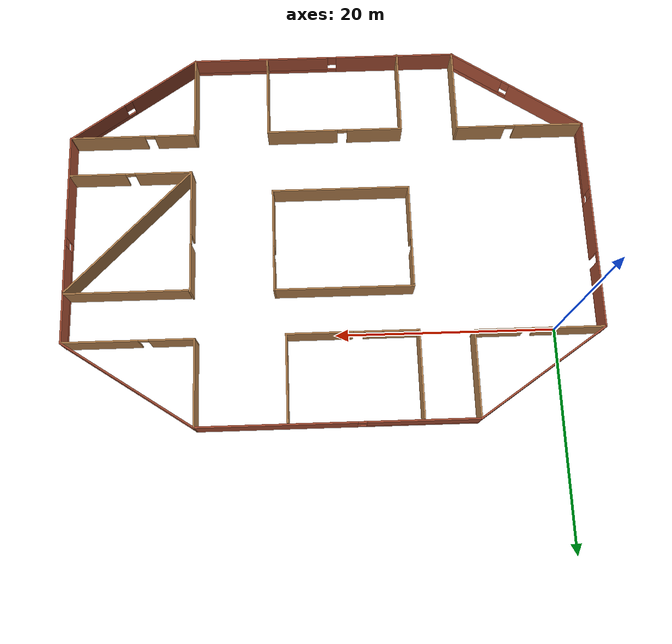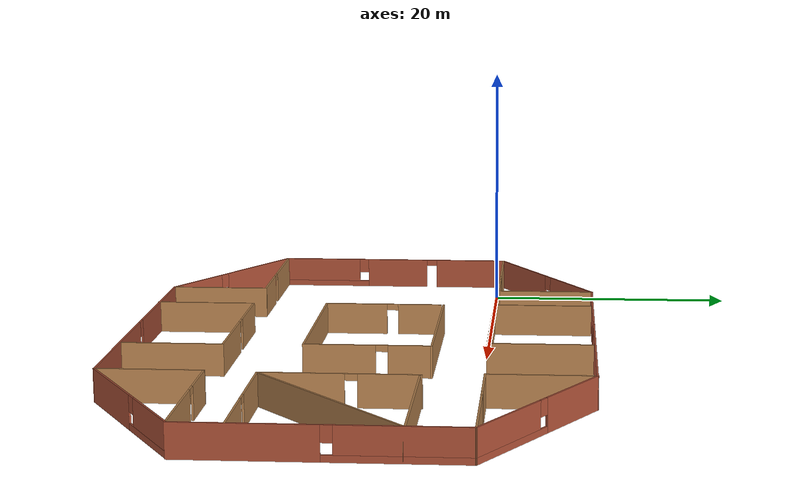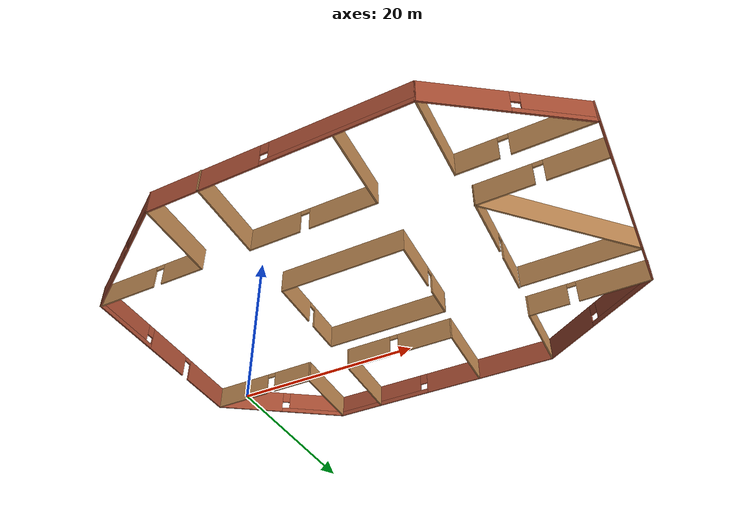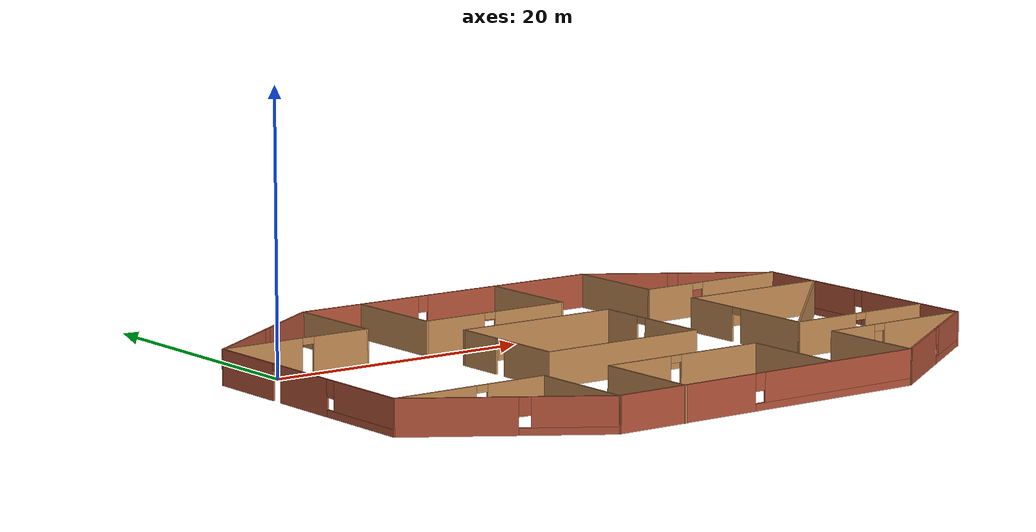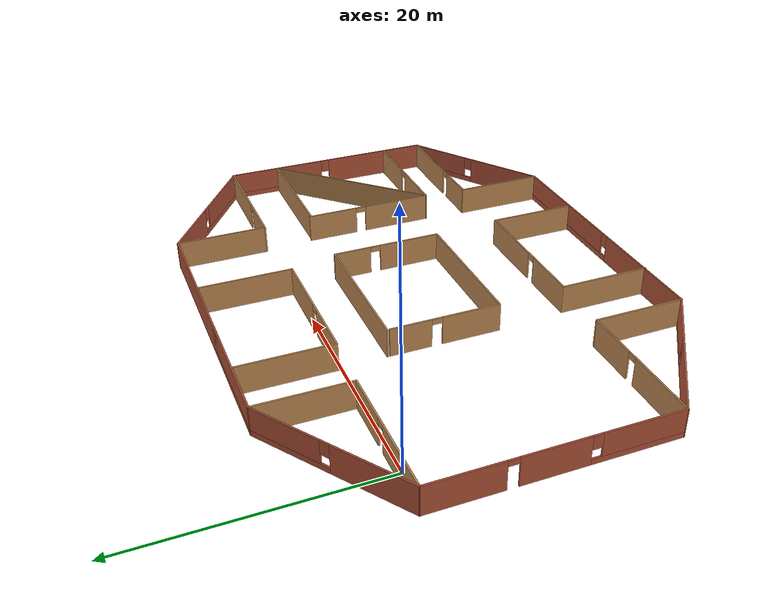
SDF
<?xml version='1.0'?>
<sdf version='1.6'>
  <model name='structure'>
    <pose frame=''>20.1659 -9.48658 0 0 -0 0</pose>
    <link name='Wall_0'>
      <pose frame=''>-24.193 0.018661 0 0 0 -1.5708</pose>
      <visual name='Wall_0_Visual_0'>
        <pose frame=''>-6.90802 0 1.25 0 -0 0</pose>
        <geometry>
          <box>
            <size>6.18397 0.15 2.5</size>
          </box>
        </geometry>
        <material>
          <script>
            <uri>file://media/materials/scripts/gazebo.material</uri>
            <name>Gazebo/Bricks</name>
          </script>
          <ambient>1 1 1 1</ambient>
        </material>
      </visual>
      <collision name='Wall_0_Collision_0'>
        <geometry>
          <box>
            <size>6.18397 0.15 2.5</size>
          </box>
        </geometry>
        <pose frame=''>-6.90802 0 1.25 0 -0 0</pose>
      </collision>
      <visual name='Wall_0_Visual_1'>
        <pose frame=''>-0.221667 0 1.25 0 -0 0</pose>
        <geometry>
          <box>
            <size>5.38873 0.15 2.5</size>
          </box>
        </geometry>
        <material>
          <script>
            <uri>file://media/materials/scripts/gazebo.material</uri>
            <name>Gazebo/Bricks</name>
          </script>
          <ambient>1 1 1 1</ambient>
        </material>
      </visual>
      <collision name='Wall_0_Collision_1'>
        <geometry>
          <box>
            <size>5.38873 0.15 2.5</size>
          </box>
        </geometry>
        <pose frame=''>-0.221667 0 1.25 0 -0 0</pose>
      </collision>
      <visual name='Wall_0_Visual_2'>
        <pose frame=''>6.23635 0 0.25 0 -0 0</pose>
        <geometry>
          <box>
            <size>7.5273 0.15 0.5</size>
          </box>
        </geometry>
        <material>
          <script>
            <uri>file://media/materials/scripts/gazebo.material</uri>
            <name>Gazebo/Bricks</name>
          </script>
          <ambient>1 1 1 1</ambient>
        </material>
      </visual>
      <collision name='Wall_0_Collision_2'>
        <geometry>
          <box>
            <size>7.5273 0.15 0.5</size>
          </box>
        </geometry>
        <pose frame=''>6.23635 0 0.25 0 -0 0</pose>
      </collision>
      <visual name='Wall_0_Visual_3'>
        <pose frame=''>6.63635 0 1.5 0 -0 0</pose>
        <geometry>
          <box>
            <size>6.7273 0.15 2</size>
          </box>
        </geometry>
        <material>
          <script>
            <uri>file://media/materials/scripts/gazebo.material</uri>
            <name>Gazebo/Bricks</name>
          </script>
          <ambient>1 1 1 1</ambient>
        </material>
      </visual>
      <collision name='Wall_0_Collision_3'>
        <geometry>
          <box>
            <size>6.7273 0.15 2</size>
          </box>
        </geometry>
        <pose frame=''>6.63635 0 1.5 0 -0 0</pose>
      </collision>
      <visual name='Wall_0_Visual_4'>
        <pose frame=''>2.8727 0 1.9 0 -0 0</pose>
        <geometry>
          <box>
            <size>0.8 0.15 1.2</size>
          </box>
        </geometry>
        <material>
          <script>
            <uri>file://media/materials/scripts/gazebo.material</uri>
            <name>Gazebo/Bricks</name>
          </script>
          <ambient>1 1 1 1</ambient>
        </material>
      </visual>
      <collision name='Wall_0_Collision_4'>
        <geometry>
          <box>
            <size>0.8 0.15 1.2</size>
          </box>
        </geometry>
        <pose frame=''>2.8727 0 1.9 0 -0 0</pose>
      </collision>
      <visual name='Wall_0_Visual_5'>
        <pose frame=''>-3.36603 0 2.25 0 -0 0</pose>
        <geometry>
          <box>
            <size>0.9 0.15 0.5</size>
          </box>
        </geometry>
        <material>
          <script>
            <uri>file://media/materials/scripts/gazebo.material</uri>
            <name>Gazebo/Bricks</name>
          </script>
          <ambient>1 1 1 1</ambient>
        </material>
      </visual>
      <collision name='Wall_0_Collision_5'>
        <geometry>
          <box>
            <size>0.9 0.15 0.5</size>
          </box>
        </geometry>
        <pose frame=''>-3.36603 0 2.25 0 -0 0</pose>
      </collision>
    </link>
    <link name='Wall_11'>
      <pose frame=''>0.082031 -17.7563 0 0 -0 0</pose>
      <visual name='Wall_11_Visual_0'>
        <pose frame=''>-6.85381 0 1.25 0 -0 0</pose>
        <geometry>
          <box>
            <size>11.2924 0.15 2.5</size>
          </box>
        </geometry>
        <material>
          <script>
            <uri>file://media/materials/scripts/gazebo.material</uri>
            <name>Gazebo/Bricks</name>
          </script>
          <ambient>1 1 1 1</ambient>
        </material>
      </visual>
      <collision name='Wall_11_Collision_0'>
        <geometry>
          <box>
            <size>11.2924 0.15 2.5</size>
          </box>
        </geometry>
        <pose frame=''>-6.85381 0 1.25 0 -0 0</pose>
      </collision>
      <visual name='Wall_11_Visual_1'>
        <pose frame=''>5.64619 0 0.25 0 -0 0</pose>
        <geometry>
          <box>
            <size>13.7076 0.15 0.5</size>
          </box>
        </geometry>
        <material>
          <script>
            <uri>file://media/materials/scripts/gazebo.material</uri>
            <name>Gazebo/Bricks</name>
          </script>
          <ambient>1 1 1 1</ambient>
        </material>
      </visual>
      <collision name='Wall_11_Collision_1'>
        <geometry>
          <box>
            <size>13.7076 0.15 0.5</size>
          </box>
        </geometry>
        <pose frame=''>5.64619 0 0.25 0 -0 0</pose>
      </collision>
      <visual name='Wall_11_Visual_2'>
        <pose frame=''>6.04619 0 1.5 0 -0 0</pose>
        <geometry>
          <box>
            <size>12.9076 0.15 2</size>
          </box>
        </geometry>
        <material>
          <script>
            <uri>file://media/materials/scripts/gazebo.material</uri>
            <name>Gazebo/Bricks</name>
          </script>
          <ambient>1 1 1 1</ambient>
        </material>
      </visual>
      <collision name='Wall_11_Collision_2'>
        <geometry>
          <box>
            <size>12.9076 0.15 2</size>
          </box>
        </geometry>
        <pose frame=''>6.04619 0 1.5 0 -0 0</pose>
      </collision>
      <visual name='Wall_11_Visual_3'>
        <pose frame=''>-0.807615 0 1.9 0 -0 0</pose>
        <geometry>
          <box>
            <size>0.8 0.15 1.2</size>
          </box>
        </geometry>
        <material>
          <script>
            <uri>file://media/materials/scripts/gazebo.material</uri>
            <name>Gazebo/Bricks</name>
          </script>
          <ambient>1 1 1 1</ambient>
        </material>
      </visual>
      <collision name='Wall_11_Collision_3'>
        <geometry>
          <box>
            <size>0.8 0.15 1.2</size>
          </box>
        </geometry>
        <pose frame=''>-0.807615 0 1.9 0 -0 0</pose>
      </collision>
    </link>
    <link name='Wall_17'>
      <pose frame=''>24.1932 0.018623 0 0 -0 1.57081</pose>
      <visual name='Wall_17_Visual_0'>
        <pose frame=''>-4.99968 0 1.25 0 -0 0</pose>
        <geometry>
          <box>
            <size>10.0006 0.15 2.5</size>
          </box>
        </geometry>
        <material>
          <script>
            <uri>file://media/materials/scripts/gazebo.material</uri>
            <name>Gazebo/Bricks</name>
          </script>
          <ambient>1 1 1 1</ambient>
        </material>
      </visual>
      <collision name='Wall_17_Collision_0'>
        <geometry>
          <box>
            <size>10.0006 0.15 2.5</size>
          </box>
        </geometry>
        <pose frame=''>-4.99968 0 1.25 0 -0 0</pose>
      </collision>
      <visual name='Wall_17_Visual_1'>
        <pose frame=''>5.00032 0 0.25 0 -0 0</pose>
        <geometry>
          <box>
            <size>9.99935 0.15 0.5</size>
          </box>
        </geometry>
        <material>
          <script>
            <uri>file://media/materials/scripts/gazebo.material</uri>
            <name>Gazebo/Bricks</name>
          </script>
          <ambient>1 1 1 1</ambient>
        </material>
      </visual>
      <collision name='Wall_17_Collision_1'>
        <geometry>
          <box>
            <size>9.99935 0.15 0.5</size>
          </box>
        </geometry>
        <pose frame=''>5.00032 0 0.25 0 -0 0</pose>
      </collision>
      <visual name='Wall_17_Visual_2'>
        <pose frame=''>5.40032 0 1.5 0 -0 0</pose>
        <geometry>
          <box>
            <size>9.19935 0.15 2</size>
          </box>
        </geometry>
        <material>
          <script>
            <uri>file://media/materials/scripts/gazebo.material</uri>
            <name>Gazebo/Bricks</name>
          </script>
          <ambient>1 1 1 1</ambient>
        </material>
      </visual>
      <collision name='Wall_17_Collision_2'>
        <geometry>
          <box>
            <size>9.19935 0.15 2</size>
          </box>
        </geometry>
        <pose frame=''>5.40032 0 1.5 0 -0 0</pose>
      </collision>
      <visual name='Wall_17_Visual_3'>
        <pose frame=''>0.400646 0 1.9 0 -0 0</pose>
        <geometry>
          <box>
            <size>0.8 0.15 1.2</size>
          </box>
        </geometry>
        <material>
          <script>
            <uri>file://media/materials/scripts/gazebo.material</uri>
            <name>Gazebo/Bricks</name>
          </script>
          <ambient>1 1 1 1</ambient>
        </material>
      </visual>
      <collision name='Wall_17_Collision_3'>
        <geometry>
          <box>
            <size>0.8 0.15 1.2</size>
          </box>
        </geometry>
        <pose frame=''>0.400646 0 1.9 0 -0 0</pose>
      </collision>
    </link>
    <link name='Wall_19'>
      <collision name='Wall_19_Collision'>
        <geometry>
          <box>
            <size>8 0.15 2.5</size>
          </box>
        </geometry>
        <pose frame=''>0 0 1.25 0 -0 0</pose>
      </collision>
      <visual name='Wall_19_Visual'>
        <pose frame=''>0 0 1.25 0 -0 0</pose>
        <geometry>
          <box>
            <size>8 0.15 2.5</size>
          </box>
        </geometry>
        <material>
          <script>
            <uri>file://media/materials/scripts/gazebo.material</uri>
            <name>Gazebo/Wood</name>
          </script>
          <ambient>1 1 1 1</ambient>
        </material>
      </visual>
      <pose frame=''>12.507 -13.8313 0 0 -0 1.5708</pose>
    </link>
    <link name='Wall_21'>
      <pose frame=''>18.307 -9.90634 0 0 -0 0</pose>
      <visual name='Wall_21_Visual_0'>
        <pose frame=''>-3.92627 0 1.25 0 -0 0</pose>
        <geometry>
          <box>
            <size>3.89747 0.15 2.5</size>
          </box>
        </geometry>
        <material>
          <script>
            <uri>file://media/materials/scripts/gazebo.material</uri>
            <name>Gazebo/Wood</name>
          </script>
          <ambient>1 1 1 1</ambient>
        </material>
      </visual>
      <collision name='Wall_21_Collision_0'>
        <geometry>
          <box>
            <size>3.89747 0.15 2.5</size>
          </box>
        </geometry>
        <pose frame=''>-3.92627 0 1.25 0 -0 0</pose>
      </collision>
      <visual name='Wall_21_Visual_1'>
        <pose frame=''>2.39873 0 1.25 0 -0 0</pose>
        <geometry>
          <box>
            <size>6.95253 0.15 2.5</size>
          </box>
        </geometry>
        <material>
          <script>
            <uri>file://media/materials/scripts/gazebo.material</uri>
            <name>Gazebo/Wood</name>
          </script>
          <ambient>1 1 1 1</ambient>
        </material>
      </visual>
      <collision name='Wall_21_Collision_1'>
        <geometry>
          <box>
            <size>6.95253 0.15 2.5</size>
          </box>
        </geometry>
        <pose frame=''>2.39873 0 1.25 0 -0 0</pose>
      </collision>
      <visual name='Wall_21_Visual_2'>
        <pose frame=''>-1.52753 0 2.25 0 -0 0</pose>
        <geometry>
          <box>
            <size>0.9 0.15 0.5</size>
          </box>
        </geometry>
        <material>
          <script>
            <uri>file://media/materials/scripts/gazebo.material</uri>
            <name>Gazebo/Wood</name>
          </script>
          <ambient>1 1 1 1</ambient>
        </material>
      </visual>
      <collision name='Wall_21_Collision_2'>
        <geometry>
          <box>
            <size>0.9 0.15 0.5</size>
          </box>
        </geometry>
        <pose frame=''>-1.52753 0 2.25 0 -0 0</pose>
      </collision>
    </link>
    <link name='Wall_23'>
      <pose frame=''>18.2681 9.94359 0 0 -0 3.14159</pose>
      <visual name='Wall_23_Visual_0'>
        <pose frame=''>-2.5252 0 1.25 0 -0 0</pose>
        <geometry>
          <box>
            <size>6.94961 0.15 2.5</size>
          </box>
        </geometry>
        <material>
          <script>
            <uri>file://media/materials/scripts/gazebo.material</uri>
            <name>Gazebo/Wood</name>
          </script>
          <ambient>1 1 1 1</ambient>
        </material>
      </visual>
      <collision name='Wall_23_Collision_0'>
        <geometry>
          <box>
            <size>6.94961 0.15 2.5</size>
          </box>
        </geometry>
        <pose frame=''>-2.5252 0 1.25 0 -0 0</pose>
      </collision>
      <visual name='Wall_23_Visual_1'>
        <pose frame=''>3.9248 0 1.25 0 -0 0</pose>
        <geometry>
          <box>
            <size>4.15039 0.15 2.5</size>
          </box>
        </geometry>
        <material>
          <script>
            <uri>file://media/materials/scripts/gazebo.material</uri>
            <name>Gazebo/Wood</name>
          </script>
          <ambient>1 1 1 1</ambient>
        </material>
      </visual>
      <collision name='Wall_23_Collision_1'>
        <geometry>
          <box>
            <size>4.15039 0.15 2.5</size>
          </box>
        </geometry>
        <pose frame=''>3.9248 0 1.25 0 -0 0</pose>
      </collision>
      <visual name='Wall_23_Visual_2'>
        <pose frame=''>1.3996 0 2.25 0 -0 0</pose>
        <geometry>
          <box>
            <size>0.9 0.15 0.5</size>
          </box>
        </geometry>
        <material>
          <script>
            <uri>file://media/materials/scripts/gazebo.material</uri>
            <name>Gazebo/Wood</name>
          </script>
          <ambient>1 1 1 1</ambient>
        </material>
      </visual>
      <collision name='Wall_23_Collision_2'>
        <geometry>
          <box>
            <size>0.9 0.15 0.5</size>
          </box>
        </geometry>
        <pose frame=''>1.3996 0 2.25 0 -0 0</pose>
      </collision>
    </link>
    <link name='Wall_27'>
      <collision name='Wall_27_Collision'>
        <geometry>
          <box>
            <size>8 0.15 2.5</size>
          </box>
        </geometry>
        <pose frame=''>0 0 1.25 0 -0 0</pose>
      </collision>
      <visual name='Wall_27_Visual'>
        <pose frame=''>0 0 1.25 0 -0 0</pose>
        <geometry>
          <box>
            <size>8 0.15 2.5</size>
          </box>
        </geometry>
        <material>
          <script>
            <uri>file://media/materials/scripts/gazebo.material</uri>
            <name>Gazebo/Wood</name>
          </script>
          <ambient>1 1 1 1</ambient>
        </material>
      </visual>
      <pose frame=''>12.3431 13.8686 0 0 -0 1.5708</pose>
    </link>
    <link name='Wall_29'>
      <pose frame=''>-0.081897 17.7936 0 0 -0 3.14159</pose>
      <visual name='Wall_29_Visual_0'>
        <pose frame=''>-5.3765 0 1.25 0 -0 0</pose>
        <geometry>
          <box>
            <size>14.247 0.15 2.5</size>
          </box>
        </geometry>
        <material>
          <script>
            <uri>file://media/materials/scripts/gazebo.material</uri>
            <name>Gazebo/Bricks</name>
          </script>
          <ambient>1 1 1 1</ambient>
        </material>
      </visual>
      <collision name='Wall_29_Collision_0'>
        <geometry>
          <box>
            <size>14.247 0.15 2.5</size>
          </box>
        </geometry>
        <pose frame=''>-5.3765 0 1.25 0 -0 0</pose>
      </collision>
      <visual name='Wall_29_Visual_1'>
        <pose frame=''>7.1235 0 0.25 0 -0 0</pose>
        <geometry>
          <box>
            <size>10.753 0.15 0.5</size>
          </box>
        </geometry>
        <material>
          <script>
            <uri>file://media/materials/scripts/gazebo.material</uri>
            <name>Gazebo/Bricks</name>
          </script>
          <ambient>1 1 1 1</ambient>
        </material>
      </visual>
      <collision name='Wall_29_Collision_1'>
        <geometry>
          <box>
            <size>10.753 0.15 0.5</size>
          </box>
        </geometry>
        <pose frame=''>7.1235 0 0.25 0 -0 0</pose>
      </collision>
      <visual name='Wall_29_Visual_2'>
        <pose frame=''>7.5235 0 1.5 0 -0 0</pose>
        <geometry>
          <box>
            <size>9.953 0.15 2</size>
          </box>
        </geometry>
        <material>
          <script>
            <uri>file://media/materials/scripts/gazebo.material</uri>
            <name>Gazebo/Bricks</name>
          </script>
          <ambient>1 1 1 1</ambient>
        </material>
      </visual>
      <collision name='Wall_29_Collision_2'>
        <geometry>
          <box>
            <size>9.953 0.15 2</size>
          </box>
        </geometry>
        <pose frame=''>7.5235 0 1.5 0 -0 0</pose>
      </collision>
      <visual name='Wall_29_Visual_3'>
        <pose frame=''>2.147 0 1.9 0 -0 0</pose>
        <geometry>
          <box>
            <size>0.8 0.15 1.2</size>
          </box>
        </geometry>
        <material>
          <script>
            <uri>file://media/materials/scripts/gazebo.material</uri>
            <name>Gazebo/Bricks</name>
          </script>
          <ambient>1 1 1 1</ambient>
        </material>
      </visual>
      <collision name='Wall_29_Collision_3'>
        <geometry>
          <box>
            <size>0.8 0.15 1.2</size>
          </box>
        </geometry>
        <pose frame=''>2.147 0 1.9 0 -0 0</pose>
      </collision>
    </link>
    <link name='Wall_31'>
      <collision name='Wall_31_Collision'>
        <geometry>
          <box>
            <size>8 0.15 2.5</size>
          </box>
        </geometry>
        <pose frame=''>0 0 1.25 0 -0 0</pose>
      </collision>
      <visual name='Wall_31_Visual'>
        <pose frame=''>0 0 1.25 0 -0 0</pose>
        <geometry>
          <box>
            <size>8 0.15 2.5</size>
          </box>
        </geometry>
        <material>
          <script>
            <uri>file://media/materials/scripts/gazebo.material</uri>
            <name>Gazebo/Wood</name>
          </script>
          <ambient>1 1 1 1</ambient>
        </material>
      </visual>
      <pose frame=''>-12.5069 13.8686 0 0 0 -1.5708</pose>
    </link>
    <link name='Wall_33'>
      <pose frame=''>-18.3499 9.94362 0 0 -0 3.14159</pose>
      <visual name='Wall_33_Visual_0'>
        <pose frame=''>-3.649 0 1.25 0 -0 0</pose>
        <geometry>
          <box>
            <size>4.53806 0.15 2.5</size>
          </box>
        </geometry>
        <material>
          <script>
            <uri>file://media/materials/scripts/gazebo.material</uri>
            <name>Gazebo/Wood</name>
          </script>
          <ambient>1 1 1 1</ambient>
        </material>
      </visual>
      <collision name='Wall_33_Collision_0'>
        <geometry>
          <box>
            <size>4.53806 0.15 2.5</size>
          </box>
        </geometry>
        <pose frame=''>-3.649 0 1.25 0 -0 0</pose>
      </collision>
      <visual name='Wall_33_Visual_1'>
        <pose frame=''>2.71903 0 1.25 0 -0 0</pose>
        <geometry>
          <box>
            <size>6.39801 0.15 2.5</size>
          </box>
        </geometry>
        <material>
          <script>
            <uri>file://media/materials/scripts/gazebo.material</uri>
            <name>Gazebo/Wood</name>
          </script>
          <ambient>1 1 1 1</ambient>
        </material>
      </visual>
      <collision name='Wall_33_Collision_1'>
        <geometry>
          <box>
            <size>6.39801 0.15 2.5</size>
          </box>
        </geometry>
        <pose frame=''>2.71903 0 1.25 0 -0 0</pose>
      </collision>
      <visual name='Wall_33_Visual_2'>
        <pose frame=''>-0.929972 0 2.25 0 -0 0</pose>
        <geometry>
          <box>
            <size>0.9 0.15 0.5</size>
          </box>
        </geometry>
        <material>
          <script>
            <uri>file://media/materials/scripts/gazebo.material</uri>
            <name>Gazebo/Wood</name>
          </script>
          <ambient>1 1 1 1</ambient>
        </material>
      </visual>
      <collision name='Wall_33_Collision_2'>
        <geometry>
          <box>
            <size>0.9 0.15 0.5</size>
          </box>
        </geometry>
        <pose frame=''>-0.929972 0 2.25 0 -0 0</pose>
      </collision>
    </link>
    <link name='Wall_35'>
      <pose frame=''>-18.3499 13.8686 0 0 -0 0.591502</pose>
      <visual name='Wall_35_Visual_0'>
        <pose frame=''>-3.5498 0 1.25 0 -0 0</pose>
        <geometry>
          <box>
            <size>7.12825 0.15 2.5</size>
          </box>
        </geometry>
        <material>
          <script>
            <uri>file://media/materials/scripts/gazebo.material</uri>
            <name>Gazebo/Bricks</name>
          </script>
          <ambient>1 1 1 1</ambient>
        </material>
      </visual>
      <collision name='Wall_35_Collision_0'>
        <geometry>
          <box>
            <size>7.12825 0.15 2.5</size>
          </box>
        </geometry>
        <pose frame=''>-3.5498 0 1.25 0 -0 0</pose>
      </collision>
      <visual name='Wall_35_Visual_1'>
        <pose frame=''>3.56413 0 0.25 0 -0 0</pose>
        <geometry>
          <box>
            <size>7.09959 0.15 0.5</size>
          </box>
        </geometry>
        <material>
          <script>
            <uri>file://media/materials/scripts/gazebo.material</uri>
            <name>Gazebo/Bricks</name>
          </script>
          <ambient>1 1 1 1</ambient>
        </material>
      </visual>
      <collision name='Wall_35_Collision_1'>
        <geometry>
          <box>
            <size>7.09959 0.15 0.5</size>
          </box>
        </geometry>
        <pose frame=''>3.56413 0 0.25 0 -0 0</pose>
      </collision>
      <visual name='Wall_35_Visual_2'>
        <pose frame=''>3.96413 0 1.5 0 -0 0</pose>
        <geometry>
          <box>
            <size>6.29959 0.15 2</size>
          </box>
        </geometry>
        <material>
          <script>
            <uri>file://media/materials/scripts/gazebo.material</uri>
            <name>Gazebo/Bricks</name>
          </script>
          <ambient>1 1 1 1</ambient>
        </material>
      </visual>
      <collision name='Wall_35_Collision_2'>
        <geometry>
          <box>
            <size>6.29959 0.15 2</size>
          </box>
        </geometry>
        <pose frame=''>3.96413 0 1.5 0 -0 0</pose>
      </collision>
      <visual name='Wall_35_Visual_3'>
        <pose frame=''>0.414331 0 1.9 0 -0 0</pose>
        <geometry>
          <box>
            <size>0.8 0.15 1.2</size>
          </box>
        </geometry>
        <material>
          <script>
            <uri>file://media/materials/scripts/gazebo.material</uri>
            <name>Gazebo/Bricks</name>
          </script>
          <ambient>1 1 1 1</ambient>
        </material>
      </visual>
      <collision name='Wall_35_Collision_3'>
        <geometry>
          <box>
            <size>0.8 0.15 1.2</size>
          </box>
        </geometry>
        <pose frame=''>0.414331 0 1.9 0 -0 0</pose>
      </collision>
    </link>
    <link name='Wall_37'>
      <pose frame=''>18.2681 13.8686 0 0 0 -0.585076</pose>
      <visual name='Wall_37_Visual_0'>
        <pose frame=''>-3.98995 0 1.25 0 -0 0</pose>
        <geometry>
          <box>
            <size>6.38435 0.15 2.5</size>
          </box>
        </geometry>
        <material>
          <script>
            <uri>file://media/materials/scripts/gazebo.material</uri>
            <name>Gazebo/Bricks</name>
          </script>
          <ambient>1 1 1 1</ambient>
        </material>
      </visual>
      <collision name='Wall_37_Collision_0'>
        <geometry>
          <box>
            <size>6.38435 0.15 2.5</size>
          </box>
        </geometry>
        <pose frame=''>-3.98995 0 1.25 0 -0 0</pose>
      </collision>
      <visual name='Wall_37_Visual_1'>
        <pose frame=''>3.19217 0 0.25 0 -0 0</pose>
        <geometry>
          <box>
            <size>7.97991 0.15 0.5</size>
          </box>
        </geometry>
        <material>
          <script>
            <uri>file://media/materials/scripts/gazebo.material</uri>
            <name>Gazebo/Bricks</name>
          </script>
          <ambient>1 1 1 1</ambient>
        </material>
      </visual>
      <collision name='Wall_37_Collision_1'>
        <geometry>
          <box>
            <size>7.97991 0.15 0.5</size>
          </box>
        </geometry>
        <pose frame=''>3.19217 0 0.25 0 -0 0</pose>
      </collision>
      <visual name='Wall_37_Visual_2'>
        <pose frame=''>3.59217 0 1.5 0 -0 0</pose>
        <geometry>
          <box>
            <size>7.17991 0.15 2</size>
          </box>
        </geometry>
        <material>
          <script>
            <uri>file://media/materials/scripts/gazebo.material</uri>
            <name>Gazebo/Bricks</name>
          </script>
          <ambient>1 1 1 1</ambient>
        </material>
      </visual>
      <collision name='Wall_37_Collision_2'>
        <geometry>
          <box>
            <size>7.17991 0.15 2</size>
          </box>
        </geometry>
        <pose frame=''>3.59217 0 1.5 0 -0 0</pose>
      </collision>
      <visual name='Wall_37_Visual_3'>
        <pose frame=''>-0.397779 0 1.9 0 -0 0</pose>
        <geometry>
          <box>
            <size>0.8 0.15 1.2</size>
          </box>
        </geometry>
        <material>
          <script>
            <uri>file://media/materials/scripts/gazebo.material</uri>
            <name>Gazebo/Bricks</name>
          </script>
          <ambient>1 1 1 1</ambient>
        </material>
      </visual>
      <collision name='Wall_37_Collision_3'>
        <geometry>
          <box>
            <size>0.8 0.15 1.2</size>
          </box>
        </geometry>
        <pose frame=''>-0.397779 0 1.9 0 -0 0</pose>
      </collision>
    </link>
    <link name='Wall_40'>
      <pose frame=''>18.307 -13.8313 0 0 -0 0.594933</pose>
      <visual name='Wall_40_Visual_0'>
        <pose frame=''>-3.38232 0 1.25 0 -0 0</pose>
        <geometry>
          <box>
            <size>7.39187 0.15 2.5</size>
          </box>
        </geometry>
        <material>
          <script>
            <uri>file://media/materials/scripts/gazebo.material</uri>
            <name>Gazebo/Bricks</name>
          </script>
          <ambient>1 1 1 1</ambient>
        </material>
      </visual>
      <collision name='Wall_40_Collision_0'>
        <geometry>
          <box>
            <size>7.39187 0.15 2.5</size>
          </box>
        </geometry>
        <pose frame=''>-3.38232 0 1.25 0 -0 0</pose>
      </collision>
      <visual name='Wall_40_Visual_1'>
        <pose frame=''>3.69593 0 0.25 0 -0 0</pose>
        <geometry>
          <box>
            <size>6.76465 0.15 0.5</size>
          </box>
        </geometry>
        <material>
          <script>
            <uri>file://media/materials/scripts/gazebo.material</uri>
            <name>Gazebo/Bricks</name>
          </script>
          <ambient>1 1 1 1</ambient>
        </material>
      </visual>
      <collision name='Wall_40_Collision_1'>
        <geometry>
          <box>
            <size>6.76465 0.15 0.5</size>
          </box>
        </geometry>
        <pose frame=''>3.69593 0 0.25 0 -0 0</pose>
      </collision>
      <visual name='Wall_40_Visual_2'>
        <pose frame=''>4.09593 0 1.5 0 -0 0</pose>
        <geometry>
          <box>
            <size>5.96465 0.15 2</size>
          </box>
        </geometry>
        <material>
          <script>
            <uri>file://media/materials/scripts/gazebo.material</uri>
            <name>Gazebo/Bricks</name>
          </script>
          <ambient>1 1 1 1</ambient>
        </material>
      </visual>
      <collision name='Wall_40_Collision_2'>
        <geometry>
          <box>
            <size>5.96465 0.15 2</size>
          </box>
        </geometry>
        <pose frame=''>4.09593 0 1.5 0 -0 0</pose>
      </collision>
      <visual name='Wall_40_Visual_3'>
        <pose frame=''>0.713612 0 1.9 0 -0 0</pose>
        <geometry>
          <box>
            <size>0.8 0.15 1.2</size>
          </box>
        </geometry>
        <material>
          <script>
            <uri>file://media/materials/scripts/gazebo.material</uri>
            <name>Gazebo/Bricks</name>
          </script>
          <ambient>1 1 1 1</ambient>
        </material>
      </visual>
      <collision name='Wall_40_Collision_3'>
        <geometry>
          <box>
            <size>0.8 0.15 1.2</size>
          </box>
        </geometry>
        <pose frame=''>0.713612 0 1.9 0 -0 0</pose>
      </collision>
    </link>
    <link name='Wall_43'>
      <pose frame=''>-18.268 -13.8313 0 0 0 -0.585076</pose>
      <visual name='Wall_43_Visual_0'>
        <pose frame=''>-3.22778 0 1.25 0 -0 0</pose>
        <geometry>
          <box>
            <size>7.9087 0.15 2.5</size>
          </box>
        </geometry>
        <material>
          <script>
            <uri>file://media/materials/scripts/gazebo.material</uri>
            <name>Gazebo/Bricks</name>
          </script>
          <ambient>1 1 1 1</ambient>
        </material>
      </visual>
      <collision name='Wall_43_Collision_0'>
        <geometry>
          <box>
            <size>7.9087 0.15 2.5</size>
          </box>
        </geometry>
        <pose frame=''>-3.22778 0 1.25 0 -0 0</pose>
      </collision>
      <visual name='Wall_43_Visual_1'>
        <pose frame=''>3.95435 0 0.25 0 -0 0</pose>
        <geometry>
          <box>
            <size>6.45555 0.15 0.5</size>
          </box>
        </geometry>
        <material>
          <script>
            <uri>file://media/materials/scripts/gazebo.material</uri>
            <name>Gazebo/Bricks</name>
          </script>
          <ambient>1 1 1 1</ambient>
        </material>
      </visual>
      <collision name='Wall_43_Collision_1'>
        <geometry>
          <box>
            <size>6.45555 0.15 0.5</size>
          </box>
        </geometry>
        <pose frame=''>3.95435 0 0.25 0 -0 0</pose>
      </collision>
      <visual name='Wall_43_Visual_2'>
        <pose frame=''>4.35435 0 1.5 0 -0 0</pose>
        <geometry>
          <box>
            <size>5.65555 0.15 2</size>
          </box>
        </geometry>
        <material>
          <script>
            <uri>file://media/materials/scripts/gazebo.material</uri>
            <name>Gazebo/Bricks</name>
          </script>
          <ambient>1 1 1 1</ambient>
        </material>
      </visual>
      <collision name='Wall_43_Collision_2'>
        <geometry>
          <box>
            <size>5.65555 0.15 2</size>
          </box>
        </geometry>
        <pose frame=''>4.35435 0 1.5 0 -0 0</pose>
      </collision>
      <visual name='Wall_43_Visual_3'>
        <pose frame=''>1.12657 0 1.9 0 -0 0</pose>
        <geometry>
          <box>
            <size>0.8 0.15 1.2</size>
          </box>
        </geometry>
        <material>
          <script>
            <uri>file://media/materials/scripts/gazebo.material</uri>
            <name>Gazebo/Bricks</name>
          </script>
          <ambient>1 1 1 1</ambient>
        </material>
      </visual>
      <collision name='Wall_43_Collision_3'>
        <geometry>
          <box>
            <size>0.8 0.15 1.2</size>
          </box>
        </geometry>
        <pose frame=''>1.12657 0 1.9 0 -0 0</pose>
      </collision>
    </link>
    <link name='Wall_46'>
      <collision name='Wall_46_Collision'>
        <geometry>
          <box>
            <size>8 0.15 2.5</size>
          </box>
        </geometry>
        <pose frame=''>0 0 1.25 0 -0 0</pose>
      </collision>
      <visual name='Wall_46_Visual'>
        <pose frame=''>0 0 1.25 0 -0 0</pose>
        <geometry>
          <box>
            <size>8 0.15 2.5</size>
          </box>
        </geometry>
        <material>
          <script>
            <uri>file://media/materials/scripts/gazebo.material</uri>
            <name>Gazebo/Wood</name>
          </script>
          <ambient>1 1 1 1</ambient>
        </material>
      </visual>
      <pose frame=''>-7.03517 -13.8977 0 0 -0 1.5708</pose>
    </link>
    <link name='Wall_47'>
      <pose frame=''>-0.735172 -9.97266 0 0 -0 0</pose>
      <visual name='Wall_47_Visual_0'>
        <pose frame=''>-3.7685 0 1.25 0 -0 0</pose>
        <geometry>
          <box>
            <size>5.213 0.15 2.5</size>
          </box>
        </geometry>
        <material>
          <script>
            <uri>file://media/materials/scripts/gazebo.material</uri>
            <name>Gazebo/Wood</name>
          </script>
          <ambient>0.996078 0.47451 0.0196078 1</ambient>
        </material>
      </visual>
      <collision name='Wall_47_Collision_0'>
        <geometry>
          <box>
            <size>5.213 0.15 2.5</size>
          </box>
        </geometry>
        <pose frame=''>-3.7685 0 1.25 0 -0 0</pose>
      </collision>
      <visual name='Wall_47_Visual_1'>
        <pose frame=''>3.0565 0 1.25 0 -0 0</pose>
        <geometry>
          <box>
            <size>6.637 0.15 2.5</size>
          </box>
        </geometry>
        <material>
          <script>
            <uri>file://media/materials/scripts/gazebo.material</uri>
            <name>Gazebo/Wood</name>
          </script>
          <ambient>0.996078 0.47451 0.0196078 1</ambient>
        </material>
      </visual>
      <collision name='Wall_47_Collision_1'>
        <geometry>
          <box>
            <size>6.637 0.15 2.5</size>
          </box>
        </geometry>
        <pose frame=''>3.0565 0 1.25 0 -0 0</pose>
      </collision>
      <visual name='Wall_47_Visual_2'>
        <pose frame=''>-0.712002 0 2.25 0 -0 0</pose>
        <geometry>
          <box>
            <size>0.9 0.15 0.5</size>
          </box>
        </geometry>
        <material>
          <script>
            <uri>file://media/materials/scripts/gazebo.material</uri>
            <name>Gazebo/Wood</name>
          </script>
          <ambient>0.996078 0.47451 0.0196078 1</ambient>
        </material>
      </visual>
      <collision name='Wall_47_Collision_2'>
        <geometry>
          <box>
            <size>0.9 0.15 0.5</size>
          </box>
        </geometry>
        <pose frame=''>-0.712002 0 2.25 0 -0 0</pose>
      </collision>
    </link>
    <link name='Wall_48'>
      <collision name='Wall_48_Collision'>
        <geometry>
          <box>
            <size>7.75 0.15 2.5</size>
          </box>
        </geometry>
        <pose frame=''>0 0 1.25 0 -0 0</pose>
      </collision>
      <visual name='Wall_48_Visual'>
        <pose frame=''>0 0 1.25 0 -0 0</pose>
        <geometry>
          <box>
            <size>7.75 0.15 2.5</size>
          </box>
        </geometry>
        <material>
          <script>
            <uri>file://media/materials/scripts/gazebo.material</uri>
            <name>Gazebo/Wood</name>
          </script>
          <ambient>1 1 1 1</ambient>
        </material>
      </visual>
      <pose frame=''>5.56483 -13.7727 0 0 0 -1.5708</pose>
    </link>
    <link name='Wall_51'>
      <pose frame=''>12.7824 -0.282558 0 0 0 -1.5708</pose>
      <visual name='Wall_51_Visual_0'>
        <pose frame=''>-3.58359 0 1.25 0 -0 0</pose>
        <geometry>
          <box>
            <size>4.58282 0.15 2.5</size>
          </box>
        </geometry>
        <material>
          <script>
            <uri>file://media/materials/scripts/gazebo.material</uri>
            <name>Gazebo/Wood</name>
          </script>
          <ambient>1 1 1 1</ambient>
        </material>
      </visual>
      <collision name='Wall_51_Collision_0'>
        <geometry>
          <box>
            <size>4.58282 0.15 2.5</size>
          </box>
        </geometry>
        <pose frame=''>-3.58359 0 1.25 0 -0 0</pose>
      </collision>
      <visual name='Wall_51_Visual_1'>
        <pose frame=''>2.74141 0 1.25 0 -0 0</pose>
        <geometry>
          <box>
            <size>6.26718 0.15 2.5</size>
          </box>
        </geometry>
        <material>
          <script>
            <uri>file://media/materials/scripts/gazebo.material</uri>
            <name>Gazebo/Wood</name>
          </script>
          <ambient>1 1 1 1</ambient>
        </material>
      </visual>
      <collision name='Wall_51_Collision_1'>
        <geometry>
          <box>
            <size>6.26718 0.15 2.5</size>
          </box>
        </geometry>
        <pose frame=''>2.74141 0 1.25 0 -0 0</pose>
      </collision>
      <visual name='Wall_51_Visual_2'>
        <pose frame=''>-0.842176 0 2.25 0 -0 0</pose>
        <geometry>
          <box>
            <size>0.9 0.15 0.5</size>
          </box>
        </geometry>
        <material>
          <script>
            <uri>file://media/materials/scripts/gazebo.material</uri>
            <name>Gazebo/Wood</name>
          </script>
          <ambient>1 1 1 1</ambient>
        </material>
      </visual>
      <collision name='Wall_51_Collision_2'>
        <geometry>
          <box>
            <size>0.9 0.15 0.5</size>
          </box>
        </geometry>
        <pose frame=''>-0.842176 0 2.25 0 -0 0</pose>
      </collision>
    </link>
    <link name='Wall_52'>
      <pose frame=''>18.4574 -6.08256 0 0 -0 0</pose>
      <visual name='Wall_52_Visual_0'>
        <pose frame=''>-3.09005 0 1.25 0 -0 0</pose>
        <geometry>
          <box>
            <size>5.3199 0.15 2.5</size>
          </box>
        </geometry>
        <material>
          <script>
            <uri>file://media/materials/scripts/gazebo.material</uri>
            <name>Gazebo/Wood</name>
          </script>
          <ambient>1 1 1 1</ambient>
        </material>
      </visual>
      <collision name='Wall_52_Collision_0'>
        <geometry>
          <box>
            <size>5.3199 0.15 2.5</size>
          </box>
        </geometry>
        <pose frame=''>-3.09005 0 1.25 0 -0 0</pose>
      </collision>
      <visual name='Wall_52_Visual_1'>
        <pose frame=''>3.10995 0 1.25 0 -0 0</pose>
        <geometry>
          <box>
            <size>5.2801 0.15 2.5</size>
          </box>
        </geometry>
        <material>
          <script>
            <uri>file://media/materials/scripts/gazebo.material</uri>
            <name>Gazebo/Wood</name>
          </script>
          <ambient>1 1 1 1</ambient>
        </material>
      </visual>
      <collision name='Wall_52_Collision_1'>
        <geometry>
          <box>
            <size>5.2801 0.15 2.5</size>
          </box>
        </geometry>
        <pose frame=''>3.10995 0 1.25 0 -0 0</pose>
      </collision>
      <visual name='Wall_52_Visual_2'>
        <pose frame=''>0.019897 0 2.25 0 -0 0</pose>
        <geometry>
          <box>
            <size>0.9 0.15 0.5</size>
          </box>
        </geometry>
        <material>
          <script>
            <uri>file://media/materials/scripts/gazebo.material</uri>
            <name>Gazebo/Wood</name>
          </script>
          <ambient>1 1 1 1</ambient>
        </material>
      </visual>
      <collision name='Wall_52_Collision_2'>
        <geometry>
          <box>
            <size>0.9 0.15 0.5</size>
          </box>
        </geometry>
        <pose frame=''>0.019897 0 2.25 0 -0 0</pose>
      </collision>
    </link>
    <link name='Wall_54'>
      <collision name='Wall_54_Collision'>
        <geometry>
          <box>
            <size>8 0.15 2.5</size>
          </box>
        </geometry>
        <pose frame=''>0 0 1.25 0 -0 0</pose>
      </collision>
      <visual name='Wall_54_Visual'>
        <pose frame=''>0 0 1.25 0 -0 0</pose>
        <geometry>
          <box>
            <size>8 0.15 2.5</size>
          </box>
        </geometry>
        <material>
          <script>
            <uri>file://media/materials/scripts/gazebo.material</uri>
            <name>Gazebo/Wood</name>
          </script>
          <ambient>1 1 1 1</ambient>
        </material>
      </visual>
      <pose frame=''>-7.60444 13.6894 0 0 0 -1.5708</pose>
    </link>
    <link name='Wall_55'>
      <pose frame=''>-1.67944 9.76445 0 0 -0 0</pose>
      <visual name='Wall_55_Visual_0'>
        <pose frame=''>-3.47778 0 1.25 0 -0 0</pose>
        <geometry>
          <box>
            <size>5.04444 0.15 2.5</size>
          </box>
        </geometry>
        <material>
          <script>
            <uri>file://media/materials/scripts/gazebo.material</uri>
            <name>Gazebo/Wood</name>
          </script>
          <ambient>0.996078 0.47451 0.0196078 1</ambient>
        </material>
      </visual>
      <collision name='Wall_55_Collision_0'>
        <geometry>
          <box>
            <size>5.04444 0.15 2.5</size>
          </box>
        </geometry>
        <pose frame=''>-3.47778 0 1.25 0 -0 0</pose>
      </collision>
      <visual name='Wall_55_Visual_1'>
        <pose frame=''>2.97222 0 1.25 0 -0 0</pose>
        <geometry>
          <box>
            <size>6.05556 0.15 2.5</size>
          </box>
        </geometry>
        <material>
          <script>
            <uri>file://media/materials/scripts/gazebo.material</uri>
            <name>Gazebo/Wood</name>
          </script>
          <ambient>0.996078 0.47451 0.0196078 1</ambient>
        </material>
      </visual>
      <collision name='Wall_55_Collision_1'>
        <geometry>
          <box>
            <size>6.05556 0.15 2.5</size>
          </box>
        </geometry>
        <pose frame=''>2.97222 0 1.25 0 -0 0</pose>
      </collision>
      <visual name='Wall_55_Visual_2'>
        <pose frame=''>-0.505564 0 2.25 0 -0 0</pose>
        <geometry>
          <box>
            <size>0.9 0.15 0.5</size>
          </box>
        </geometry>
        <material>
          <script>
            <uri>file://media/materials/scripts/gazebo.material</uri>
            <name>Gazebo/Wood</name>
          </script>
          <ambient>0.996078 0.47451 0.0196078 1</ambient>
        </material>
      </visual>
      <collision name='Wall_55_Collision_2'>
        <geometry>
          <box>
            <size>0.9 0.15 0.5</size>
          </box>
        </geometry>
        <pose frame=''>-0.505564 0 2.25 0 -0 0</pose>
      </collision>
    </link>
    <link name='Wall_56'>
      <collision name='Wall_56_Collision'>
        <geometry>
          <box>
            <size>8 0.15 2.5</size>
          </box>
        </geometry>
        <pose frame=''>0 0 1.25 0 -0 0</pose>
      </collision>
      <visual name='Wall_56_Visual'>
        <pose frame=''>0 0 1.25 0 -0 0</pose>
        <geometry>
          <box>
            <size>8 0.15 2.5</size>
          </box>
        </geometry>
        <material>
          <script>
            <uri>file://media/materials/scripts/gazebo.material</uri>
            <name>Gazebo/Wood</name>
          </script>
          <ambient>1 1 1 1</ambient>
        </material>
      </visual>
      <pose frame=''>4.24556 13.6894 0 0 -0 1.5708</pose>
    </link>
    <link name='Wall_6'>
      <pose frame=''>-18.268 -9.90634 0 0 -0 0</pose>
      <visual name='Wall_6_Visual_0'>
        <pose frame=''>-2.77939 0 1.25 0 -0 0</pose>
        <geometry>
          <box>
            <size>6.44121 0.15 2.5</size>
          </box>
        </geometry>
        <material>
          <script>
            <uri>file://media/materials/scripts/gazebo.material</uri>
            <name>Gazebo/Wood</name>
          </script>
          <ambient>1 1 1 1</ambient>
        </material>
      </visual>
      <collision name='Wall_6_Collision_0'>
        <geometry>
          <box>
            <size>6.44121 0.15 2.5</size>
          </box>
        </geometry>
        <pose frame=''>-2.77939 0 1.25 0 -0 0</pose>
      </collision>
      <visual name='Wall_6_Visual_1'>
        <pose frame=''>3.67061 0 1.25 0 -0 0</pose>
        <geometry>
          <box>
            <size>4.65879 0.15 2.5</size>
          </box>
        </geometry>
        <material>
          <script>
            <uri>file://media/materials/scripts/gazebo.material</uri>
            <name>Gazebo/Wood</name>
          </script>
          <ambient>1 1 1 1</ambient>
        </material>
      </visual>
      <collision name='Wall_6_Collision_1'>
        <geometry>
          <box>
            <size>4.65879 0.15 2.5</size>
          </box>
        </geometry>
        <pose frame=''>3.67061 0 1.25 0 -0 0</pose>
      </collision>
      <visual name='Wall_6_Visual_2'>
        <pose frame=''>0.891212 0 2.25 0 -0 0</pose>
        <geometry>
          <box>
            <size>0.9 0.15 0.5</size>
          </box>
        </geometry>
        <material>
          <script>
            <uri>file://media/materials/scripts/gazebo.material</uri>
            <name>Gazebo/Wood</name>
          </script>
          <ambient>1 1 1 1</ambient>
        </material>
      </visual>
      <collision name='Wall_6_Collision_2'>
        <geometry>
          <box>
            <size>0.9 0.15 0.5</size>
          </box>
        </geometry>
        <pose frame=''>0.891212 0 2.25 0 -0 0</pose>
      </collision>
    </link>
    <link name='Wall_62'>
      <collision name='Wall_62_Collision'>
        <geometry>
          <box>
            <size>11.25 0.15 2.5</size>
          </box>
        </geometry>
        <pose frame=''>0 0 1.25 0 -0 0</pose>
      </collision>
      <visual name='Wall_62_Visual'>
        <pose frame=''>0 0 1.25 0 -0 0</pose>
        <geometry>
          <box>
            <size>11.25 0.15 2.5</size>
          </box>
        </geometry>
        <material>
          <script>
            <uri>file://media/materials/scripts/gazebo.material</uri>
            <name>Gazebo/Wood</name>
          </script>
          <ambient>1 1 1 1</ambient>
        </material>
      </visual>
      <pose frame=''>18.5715 5.42751 0 0 -0 0</pose>
    </link>
    <link name='Wall_64'>
      <collision name='Wall_64_Collision'>
        <geometry>
          <box>
            <size>16.25 0.15 2.5</size>
          </box>
        </geometry>
        <pose frame=''>0 0 1.25 0 -0 0</pose>
      </collision>
      <visual name='Wall_64_Visual'>
        <pose frame=''>0 0 1.25 0 -0 0</pose>
        <geometry>
          <box>
            <size>16.25 0.15 2.5</size>
          </box>
        </geometry>
        <material>
          <script>
            <uri>file://media/materials/scripts/gazebo.material</uri>
            <name>Gazebo/Wood</name>
          </script>
          <ambient>0.996078 0.47451 0.0196078 1</ambient>
        </material>
      </visual>
      <pose frame=''>18.4746 -0.390349 0 0 -0 0.785398</pose>
    </link>
    <link name='Wall_66'>
      <pose frame=''>-7.37873 0.710104 0 0 0 -1.5708</pose>
      <visual name='Wall_66_Visual_0'>
        <pose frame=''>-2.97553 0 1.25 0 -0 0</pose>
        <geometry>
          <box>
            <size>3.54894 0.15 2.5</size>
          </box>
        </geometry>
        <material>
          <script>
            <uri>file://media/materials/scripts/gazebo.material</uri>
            <name>Gazebo/Wood</name>
          </script>
          <ambient>0.996078 0.47451 0.0196078 1</ambient>
        </material>
      </visual>
      <collision name='Wall_66_Collision_0'>
        <geometry>
          <box>
            <size>3.54894 0.15 2.5</size>
          </box>
        </geometry>
        <pose frame=''>-2.97553 0 1.25 0 -0 0</pose>
      </collision>
      <visual name='Wall_66_Visual_1'>
        <pose frame=''>2.22447 0 1.25 0 -0 0</pose>
        <geometry>
          <box>
            <size>5.05106 0.15 2.5</size>
          </box>
        </geometry>
        <material>
          <script>
            <uri>file://media/materials/scripts/gazebo.material</uri>
            <name>Gazebo/Wood</name>
          </script>
          <ambient>0.996078 0.47451 0.0196078 1</ambient>
        </material>
      </visual>
      <collision name='Wall_66_Collision_1'>
        <geometry>
          <box>
            <size>5.05106 0.15 2.5</size>
          </box>
        </geometry>
        <pose frame=''>2.22447 0 1.25 0 -0 0</pose>
      </collision>
      <visual name='Wall_66_Visual_2'>
        <pose frame=''>-0.751058 0 2.25 0 -0 0</pose>
        <geometry>
          <box>
            <size>0.9 0.15 0.5</size>
          </box>
        </geometry>
        <material>
          <script>
            <uri>file://media/materials/scripts/gazebo.material</uri>
            <name>Gazebo/Wood</name>
          </script>
          <ambient>0.996078 0.47451 0.0196078 1</ambient>
        </material>
      </visual>
      <collision name='Wall_66_Collision_2'>
        <geometry>
          <box>
            <size>0.9 0.15 0.5</size>
          </box>
        </geometry>
        <pose frame=''>-0.751058 0 2.25 0 -0 0</pose>
      </collision>
    </link>
    <link name='Wall_67'>
      <collision name='Wall_67_Collision'>
        <geometry>
          <box>
            <size>12.75 0.15 2.5</size>
          </box>
        </geometry>
        <pose frame=''>0 0 1.25 0 -0 0</pose>
      </collision>
      <visual name='Wall_67_Visual'>
        <pose frame=''>0 0 1.25 0 -0 0</pose>
        <geometry>
          <box>
            <size>12.75 0.15 2.5</size>
          </box>
        </geometry>
        <material>
          <script>
            <uri>file://media/materials/scripts/gazebo.material</uri>
            <name>Gazebo/Wood</name>
          </script>
          <ambient>1 1 1 1</ambient>
        </material>
      </visual>
      <pose frame=''>-1.07873 -3.9649 0 0 -0 0</pose>
    </link>
    <link name='Wall_68'>
      <pose frame=''>5.22127 0.835104 0 0 -0 1.5708</pose>
      <visual name='Wall_68_Visual_0'>
        <pose frame=''>-2.11959 0 1.25 0 -0 0</pose>
        <geometry>
          <box>
            <size>5.51081 0.15 2.5</size>
          </box>
        </geometry>
        <material>
          <script>
            <uri>file://media/materials/scripts/gazebo.material</uri>
            <name>Gazebo/Wood</name>
          </script>
          <ambient>0.996078 0.47451 0.0196078 1</ambient>
        </material>
      </visual>
      <collision name='Wall_68_Collision_0'>
        <geometry>
          <box>
            <size>5.51081 0.15 2.5</size>
          </box>
        </geometry>
        <pose frame=''>-2.11959 0 1.25 0 -0 0</pose>
      </collision>
      <visual name='Wall_68_Visual_1'>
        <pose frame=''>3.20541 0 1.25 0 -0 0</pose>
        <geometry>
          <box>
            <size>3.33919 0.15 2.5</size>
          </box>
        </geometry>
        <material>
          <script>
            <uri>file://media/materials/scripts/gazebo.material</uri>
            <name>Gazebo/Wood</name>
          </script>
          <ambient>0.996078 0.47451 0.0196078 1</ambient>
        </material>
      </visual>
      <collision name='Wall_68_Collision_1'>
        <geometry>
          <box>
            <size>3.33919 0.15 2.5</size>
          </box>
        </geometry>
        <pose frame=''>3.20541 0 1.25 0 -0 0</pose>
      </collision>
      <visual name='Wall_68_Visual_2'>
        <pose frame=''>1.08581 0 2.25 0 -0 0</pose>
        <geometry>
          <box>
            <size>0.9 0.15 0.5</size>
          </box>
        </geometry>
        <material>
          <script>
            <uri>file://media/materials/scripts/gazebo.material</uri>
            <name>Gazebo/Wood</name>
          </script>
          <ambient>0.996078 0.47451 0.0196078 1</ambient>
        </material>
      </visual>
      <collision name='Wall_68_Collision_2'>
        <geometry>
          <box>
            <size>0.9 0.15 0.5</size>
          </box>
        </geometry>
        <pose frame=''>1.08581 0 2.25 0 -0 0</pose>
      </collision>
    </link>
    <link name='Wall_69'>
      <collision name='Wall_69_Collision'>
        <geometry>
          <box>
            <size>12.75 0.15 2.5</size>
          </box>
        </geometry>
        <pose frame=''>0 0 1.25 0 -0 0</pose>
      </collision>
      <visual name='Wall_69_Visual'>
        <pose frame=''>0 0 1.25 0 -0 0</pose>
        <geometry>
          <box>
            <size>12.75 0.15 2.5</size>
          </box>
        </geometry>
        <material>
          <script>
            <uri>file://media/materials/scripts/gazebo.material</uri>
            <name>Gazebo/Wood</name>
          </script>
          <ambient>1 1 1 1</ambient>
        </material>
      </visual>
      <pose frame=''>-1.07873 5.6351 0 0 -0 3.14159</pose>
    </link>
    <link name='Wall_9'>
      <collision name='Wall_9_Collision'>
        <geometry>
          <box>
            <size>8 0.15 2.5</size>
          </box>
        </geometry>
        <pose frame=''>0 0 1.25 0 -0 0</pose>
      </collision>
      <visual name='Wall_9_Visual'>
        <pose frame=''>0 0 1.25 0 -0 0</pose>
        <geometry>
          <box>
            <size>8 0.15 2.5</size>
          </box>
        </geometry>
        <material>
          <script>
            <uri>file://media/materials/scripts/gazebo.material</uri>
            <name>Gazebo/Wood</name>
          </script>
          <ambient>1 1 1 1</ambient>
        </material>
      </visual>
      <pose frame=''>-12.343 -13.8313 0 0 0 -1.5708</pose>
    </link>
    <static>1</static>
  </model>
</sdf>
